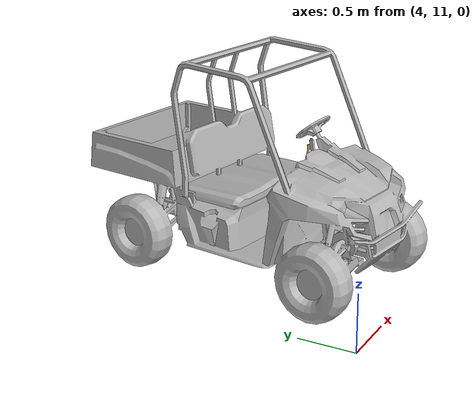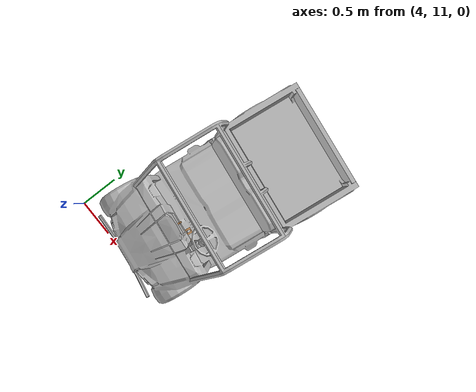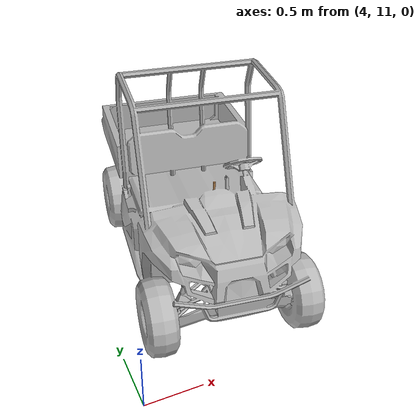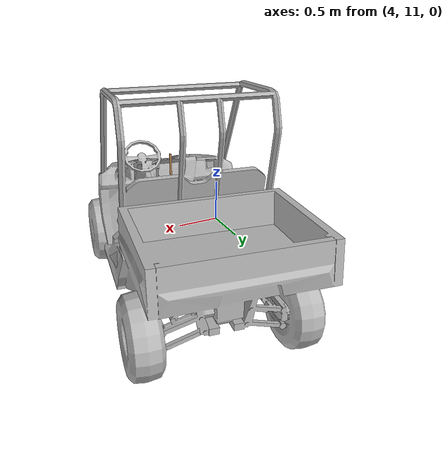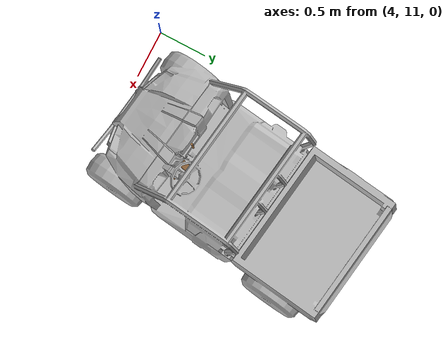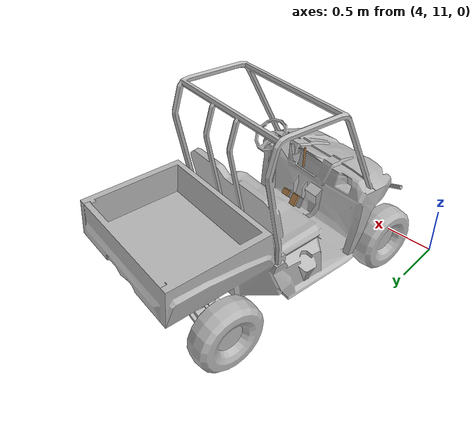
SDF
<sdf version="1.6">
 <world name="default">
  <model name="polaris_ranger_ev_clone_1_clone_clone">
   <static>true</static>
   <link name="chassis">
    <inertial>
     <mass>720</mass>
     <inertia><ixx>140</ixx><ixy>0</ixy><iyy>550</iyy><ixz>0</ixz><iyz>0</iyz><izz>550</izz></inertia>
    </inertial>
    <visual name="visual">
     <pose>0 0 0 0 0 -1.5708</pose>
     <geometry><mesh><uri>model://polaris_ranger_ev/meshes/polaris.dae</uri><scale>1 1 1</scale></mesh></geometry>
     <material>
      <script>
       <uri>model://polaris_ranger_ev/materials/scripts</uri>
       <uri>model://polaris_ranger_ev/materials/textures</uri>
       <name>Polaris/Diffuse</name>
      </script>
     </material>
    </visual>
    <collision name="chassis_bottom">
     <pose>0 0 0.35 0 -0 0</pose>
     <geometry><box><size>2 1 0.1</size></box></geometry>
    </collision>
    <collision name="cargo_bottom">
     <pose>-0.9 0 0.9 0 -0 0</pose>
     <geometry><box><size>0.9 1.2 0.01</size></box></geometry>
    </collision>
    <collision name="cargo_front">
     <pose>-0.45 0 1.025 0 -0 0</pose>
     <geometry><box><size>0.05 1.2 0.25</size></box></geometry>
    </collision>
    <collision name="cargo_back">
     <pose>-1.35 0 1.025 0 -0 0</pose>
     <geometry><box><size>0.05 1.2 0.25</size></box></geometry>
    </collision>
    <collision name="cargo_left">
     <pose>-0.9 0.6 1.025 0 -0 0</pose>
     <geometry><box><size>0.9 0.05 0.25</size></box></geometry>
    </collision>
    <collision name="cargo_right">
     <pose>-0.9 -0.6 1.025 0 -0 0</pose>
     <geometry><box><size>0.9 0.05 0.25</size></box></geometry>
    </collision>
    <collision name="seat">
     <pose>-0.1 0 0.625 0 -0 0</pose>
     <geometry><box><size>0.6 1 0.65</size></box></geometry>
    </collision>
    <collision name="seat_back">
     <pose>-0.3 0 1.125 0 -0.2 0</pose>
     <geometry><box><size>0.1 1 0.4</size></box></geometry>
    </collision>
    <collision name="engine">
     <pose>0.95 0 0.7 0 -0 0</pose>
     <geometry><box><size>0.58 1 0.8</size></box></geometry>
    </collision>
    <collision name="steering_column">
     <pose>0.525 0.3 1.025 0 -0.8 0</pose>
     <geometry><cylinder><radius>0.05</radius><length>0.45</length></cylinder></geometry>
    </collision>
   </link>
   <link name="rear_right_wheel">
    <pose>-0.85 -0.6 0.32 1.5708 -0 0</pose>
    <inertial>
     <mass>12</mass>
     <inertia><ixx>0.5</ixx><ixy>0</ixy><iyy>0.5</iyy><ixz>0</ixz><iyz>0</iyz><izz>1</izz></inertia>
    </inertial>
    <collision name="collision">
     <geometry><cylinder><radius>0.32</radius><length>0.23</length></cylinder></geometry>
     <surface>
      <friction><ode><mu>100000</mu><mu2>100000</mu2><slip1>0</slip1><slip2>0</slip2></ode></friction>
     </surface>
    </collision>
   </link>
   <joint name="rear_right_wheel_joint" type="revolute">
    <pose>0 0 -0.1 0 -0 0</pose>
    <child>rear_right_wheel</child>
    <parent>chassis</parent>
    <axis>
     <xyz>0 1 0</xyz>
     <use_parent_model_frame>1</use_parent_model_frame>
     <limit><lower>-1e+16</lower><upper>1e+16</upper></limit>
     <dynamics><spring_reference>0</spring_reference><spring_stiffness>0</spring_stiffness></dynamics>
    </axis>
    <physics><ode><limit><cfm>0</cfm><erp>0.9</erp></limit></ode></physics>
   </joint>
   <link name="rear_left_wheel">
    <pose>-0.85 0.6 0.32 1.5708 -0 0</pose>
    <inertial>
     <mass>12</mass>
     <inertia><ixx>0.5</ixx><ixy>0</ixy><iyy>0.5</iyy><ixz>0</ixz><iyz>0</iyz><izz>1</izz></inertia>
    </inertial>
    <collision name="collision">
     <geometry><cylinder><radius>0.32</radius><length>0.23</length></cylinder></geometry>
     <surface>
      <friction><ode><mu>100000</mu><mu2>100000</mu2><slip1>0</slip1><slip2>0</slip2></ode></friction>
     </surface>
    </collision>
   </link>
   <joint name="rear_left_wheel_joint" type="revolute">
    <child>rear_left_wheel</child>
    <parent>chassis</parent>
    <axis>
     <xyz>0 1 0</xyz>
     <use_parent_model_frame>1</use_parent_model_frame>
     <limit><lower>-1e+16</lower><upper>1e+16</upper></limit>
     <dynamics><spring_reference>0</spring_reference><spring_stiffness>0</spring_stiffness></dynamics>
    </axis>
    <physics><ode><limit><cfm>0</cfm><erp>0.9</erp></limit></ode></physics>
   </joint>
   <link name="front_right_wheel">
    <pose>1.03 -0.6 0.32 1.5708 -0 0</pose>
    <inertial>
     <mass>12</mass>
     <inertia><ixx>0.5</ixx><ixy>0</ixy><iyy>0.5</iyy><ixz>0</ixz><iyz>0</iyz><izz>1</izz></inertia>
    </inertial>
    <collision name="collision">
     <geometry><cylinder><radius>0.32</radius><length>0.23</length></cylinder></geometry>
     <surface>
      <friction><ode><mu>100000</mu><mu2>100000</mu2><slip1>0</slip1><slip2>0</slip2></ode></friction>
     </surface>
    </collision>
   </link>
   <link name="front_right_wheel_steering_block">
    <pose>1.03 -0.5 0.32 1.5708 -0 0</pose>
    <inertial>
     <mass>1</mass>
     <inertia><ixx>1</ixx><ixy>0</ixy><iyy>1</iyy><ixz>0</ixz><iyz>0</iyz><izz>1</izz></inertia>
    </inertial>
    <collision name="collision">
     <geometry><cylinder><radius>0.05</radius><length>0.01</length></cylinder></geometry>
    </collision>
   </link>
   <joint name="front_right_steering_joint" type="revolute">
    <child>front_right_wheel_steering_block</child>
    <parent>chassis</parent>
    <axis>
     <xyz>0 0 1</xyz>
     <limit><lower>-1</lower><upper>1</upper></limit>
     <use_parent_model_frame>1</use_parent_model_frame>
     <dynamics><spring_reference>0</spring_reference><spring_stiffness>0</spring_stiffness></dynamics>
    </axis>
    <physics><ode><limit><cfm>0</cfm><erp>0.9</erp></limit></ode></physics>
   </joint>
   <joint name="front_right_wheel_joint" type="revolute">
    <child>front_right_wheel</child>
    <parent>front_right_wheel_steering_block</parent>
    <axis>
     <xyz>0 1 0</xyz>
     <use_parent_model_frame>1</use_parent_model_frame>
     <limit><lower>-1e+16</lower><upper>1e+16</upper></limit>
     <dynamics><spring_reference>0</spring_reference><spring_stiffness>0</spring_stiffness></dynamics>
    </axis>
    <physics><ode><limit><cfm>0</cfm><erp>0.9</erp></limit></ode></physics>
   </joint>
   <link name="front_left_wheel">
    <pose>1.03 0.6 0.32 1.5708 -0 0</pose>
    <inertial>
     <mass>12</mass>
     <inertia><ixx>0.5</ixx><ixy>0</ixy><iyy>0.5</iyy><ixz>0</ixz><iyz>0</iyz><izz>1</izz></inertia>
    </inertial>
    <collision name="collision">
     <geometry><cylinder><radius>0.32</radius><length>0.23</length></cylinder></geometry>
     <surface>
      <friction><ode><mu>100000</mu><mu2>100000</mu2><slip1>0</slip1><slip2>0</slip2></ode></friction>
     </surface>
    </collision>
   </link>
   <link name="front_left_wheel_steering_block">
    <pose>1.03 0.5 0.32 1.5708 -0 0</pose>
    <inertial>
     <mass>1</mass>
     <inertia><ixx>1</ixx><ixy>0</ixy><iyy>1</iyy><ixz>0</ixz><iyz>0</iyz><izz>1</izz></inertia>
    </inertial>
    <collision name="collision">
     <geometry><cylinder><radius>0.05</radius><length>0.01</length></cylinder></geometry>
    </collision>
   </link>
   <joint name="front_left_steering_joint" type="revolute">
    <child>front_left_wheel_steering_block</child>
    <parent>chassis</parent>
    <axis>
     <xyz>0 0 1</xyz>
     <limit><lower>-1</lower><upper>1</upper></limit>
     <use_parent_model_frame>1</use_parent_model_frame>
     <dynamics><spring_reference>0</spring_reference><spring_stiffness>0</spring_stiffness></dynamics>
    </axis>
    <physics><ode><limit><cfm>0</cfm><erp>0.9</erp></limit></ode></physics>
   </joint>
   <joint name="front_left_wheel_joint" type="revolute">
    <child>front_left_wheel</child>
    <parent>front_left_wheel_steering_block</parent>
    <axis>
     <xyz>0 1 0</xyz>
     <use_parent_model_frame>1</use_parent_model_frame>
     <limit><lower>-1e+16</lower><upper>1e+16</upper></limit>
     <dynamics><spring_reference>0</spring_reference><spring_stiffness>0</spring_stiffness></dynamics>
    </axis>
    <physics><ode><limit><cfm>0</cfm><erp>0.9</erp></limit></ode></physics>
   </joint>
   <link name="gas_pedal">
    <pose>0.53 0.14 0.56 0 -1 0</pose>
    <gravity>0</gravity>
    <inertial>
     <mass>0.1</mass>
     <inertia><ixx>0.01</ixx><ixy>0</ixy><ixz>0</ixz><iyy>0.01</iyy><iyz>0</iyz><izz>0.01</izz></inertia>
    </inertial>
    <collision name="gas_pedal_collision"><geometry><box><size>0.12 0.07 0.03</size></box></geometry></collision>
    <visual name="gas_pedal_visual">
     <geometry><box><size>0.12 0.07 0.03</size></box></geometry>
     <material>
      <script><uri>file://media/materials/scripts/gazebo.material</uri><name>Gazebo/Wood</name></script>
      <ambient>0.2 0.2 0.2 1</ambient>
      <diffuse>0.2 0.2 0.2 1</diffuse>
      <specular>0.2 0.2 0.2 1</specular>
      <emissive>0.5 0.5 0.5 1</emissive>
     </material>
    </visual>
   </link>
   <link name="brake_pedal">
    <gravity>0</gravity>
    <pose>0.54 0.27 0.58 0 -1 0</pose>
    <inertial>
     <mass>0.1</mass>
     <inertia><ixx>0.01</ixx><ixy>0</ixy><ixz>0</ixz><iyy>0.01</iyy><iyz>0</iyz><izz>0.01</izz></inertia>
    </inertial>
    <collision name="brake_pedal_collision">
     <geometry><box><size>0.06 0.08 0.03</size></box></geometry>
    </collision>
    <visual name="brake_pedal_visual">
     <geometry><box><size>0.06 0.08 0.03</size></box></geometry>
     <material>
      <script><uri>file://media/materials/scripts/gazebo.material</uri><name>Gazebo/Wood</name></script>
      <ambient>0.2 0.2 0.2 1</ambient>
      <diffuse>0.2 0.2 0.2 1</diffuse>
      <specular>0.2 0.2 0.2 1</specular>
      <emissive>0.5 0.5 0.5 1</emissive>
     </material>
    </visual>
   </link>
   <link name="steering_wheel">
    <pose>0.37 0.3 1.2 0 -0.8 0</pose>
    <inertial>
     <mass>1</mass>
     <inertia><ixx>0.1</ixx><ixy>0</ixy><ixz>0</ixz><iyy>0.1</iyy><iyz>0</iyz><izz>1</izz></inertia>
    </inertial>
    <collision name="steering_wheel_post_left">
     <pose>0 0.08 0 1.5708 -0 0</pose>
     <geometry><cylinder><radius>0.02</radius><length>0.15</length></cylinder></geometry>
    </collision>
    <collision name="steering_wheel_post_right">
     <pose>0 -0.08 0 1.5708 -0 0</pose>
     <geometry><cylinder><radius>0.02</radius><length>0.15</length></cylinder></geometry>
    </collision>
    <collision name="steering_wheel_post_middle">
     <pose>-0.08 0 0 3.14159 1.57079 3.14159</pose>
     <geometry><cylinder><radius>0.02</radius><length>0.15</length></cylinder></geometry>
    </collision>
    <collision name="collision00">
     <pose>0.15 0 0 3.14159 1.57079 -1.57079</pose>
     <geometry><cylinder><length>0.105066</length><radius>0.01</radius></cylinder></geometry>
    </collision>
    <collision name="collision01">
     <pose>0.121353 0.088168 0 3.14159 1.57079 -0.942483</pose>
     <geometry><cylinder><length>0.105066</length><radius>0.01</radius></cylinder></geometry>
    </collision>
    <collision name="collision02">
     <pose>0.046353 0.142658 0 3.14159 1.57079 -0.314163</pose>
     <geometry><cylinder><length>0.105066</length><radius>0.01</radius></cylinder></geometry>
    </collision>
    <collision name="collision03">
     <pose>-0.046353 0.142658 0 3.14159 1.57079 0.314163</pose>
     <geometry><cylinder><length>0.105066</length><radius>0.01</radius></cylinder></geometry>
    </collision>
    <collision name="collision04">
     <pose>-0.121353 0.088168 0 -3.14159 1.57079 0.942483</pose>
     <geometry><cylinder><length>0.105066</length><radius>0.01</radius></cylinder></geometry>
    </collision>
    <collision name="collision05">
     <pose>-0.15 0 0 -3.14159 1.57079 1.57079</pose>
     <geometry><cylinder><length>0.105066</length><radius>0.01</radius></cylinder></geometry>
    </collision>
    <collision name="collision06">
     <pose>-0.121353 -0.088168 0 3.14159 1.57079 2.19912</pose>
     <geometry><cylinder><length>0.105066</length><radius>0.01</radius></cylinder></geometry>
    </collision>
    <collision name="collision07">
     <pose>-0.046353 -0.142658 0 -3.14159 1.57079 2.82743</pose>
     <geometry><cylinder><length>0.105066</length><radius>0.01</radius></cylinder></geometry>
    </collision>
    <collision name="collision08">
     <pose>0.046353 -0.142658 0 3.14159 1.57079 -2.82743</pose>
     <geometry><cylinder><length>0.105066</length><radius>0.01</radius></cylinder></geometry>
    </collision>
    <collision name="collision09">
     <pose>0.121353 -0.088168 0 -3.14159 1.57079 -2.19911</pose>
     <geometry><cylinder><length>0.105066</length><radius>0.01</radius></cylinder></geometry>
    </collision>
   </link>
   <link name="hand_brake">
    <pose>0.5 0 1.05 3.14159 -0.058407 3.14159</pose>
    <inertial>
     <mass>1</mass>
     <pose>0 0 -0.15 0 -0 0</pose>
     <inertia><ixx>0.1</ixx><ixy>0</ixy><ixz>0</ixz><iyy>0.1</iyy><iyz>0</iyz><izz>1</izz></inertia>
    </inertial>
    <collision name="hand_brake_collision">
     <pose>0 0 -0.1 0 -0 0</pose>
     <geometry><cylinder><radius>0.01</radius><length>0.2</length></cylinder></geometry>
    </collision>
    <visual name="hand_brake_visual">
     <pose>0 0 -0.1 0 -0 0</pose>
     <geometry><cylinder><radius>0.01</radius><length>0.2</length></cylinder></geometry>
     <material>
      <script><uri>file://media/materials/scripts/gazebo.material</uri><name>Gazebo/Wood</name></script>
     </material>
    </visual>
   </link>
   <joint name="gas_joint" type="prismatic">
    <parent>chassis</parent>
    <child>gas_pedal</child>
    <axis>
     <xyz>1 0 -1</xyz>
     <limit><lower>0</lower><upper>0.15</upper></limit>
     <use_parent_model_frame>1</use_parent_model_frame>
     <dynamics><spring_reference>0</spring_reference><spring_stiffness>0</spring_stiffness></dynamics>
    </axis>
   </joint>
   <joint name="brake_joint" type="prismatic">
    <parent>chassis</parent>
    <child>brake_pedal</child>
    <axis>
     <xyz>1 0 -0.6</xyz>
     <limit><lower>0</lower><upper>0.15</upper></limit>
     <use_parent_model_frame>1</use_parent_model_frame>
     <dynamics><spring_reference>0</spring_reference><spring_stiffness>0</spring_stiffness></dynamics>
    </axis>
   </joint>
   <joint name="steering_joint" type="revolute">
    <pose>0 0 0 1.5708 -0.8 0</pose>
    <parent>chassis</parent>
    <child>steering_wheel</child>
    <axis>
     <xyz>-1 0 1.023</xyz>
     <limit><lower>-7.853</lower><upper>7.853</upper></limit>
     <use_parent_model_frame>1</use_parent_model_frame>
     <dynamics><spring_reference>0</spring_reference><spring_stiffness>0</spring_stiffness></dynamics>
    </axis>
   </joint>
   <joint name="hand_brake_joint" type="revolute">
    <parent>chassis</parent>
    <child>hand_brake</child>
    <axis>
     <xyz>0 -1 0</xyz>
     <limit><lower>0</lower><upper>0.6</upper></limit>
     <use_parent_model_frame>1</use_parent_model_frame>
     <dynamics><spring_reference>0</spring_reference><spring_stiffness>0</spring_stiffness></dynamics>
    </axis>
   </joint>
   <pose>5.06187 12.4161 -5.2e-05 0 4.8e-05 -1.70668</pose>
  </model>
 </world>
</sdf>
